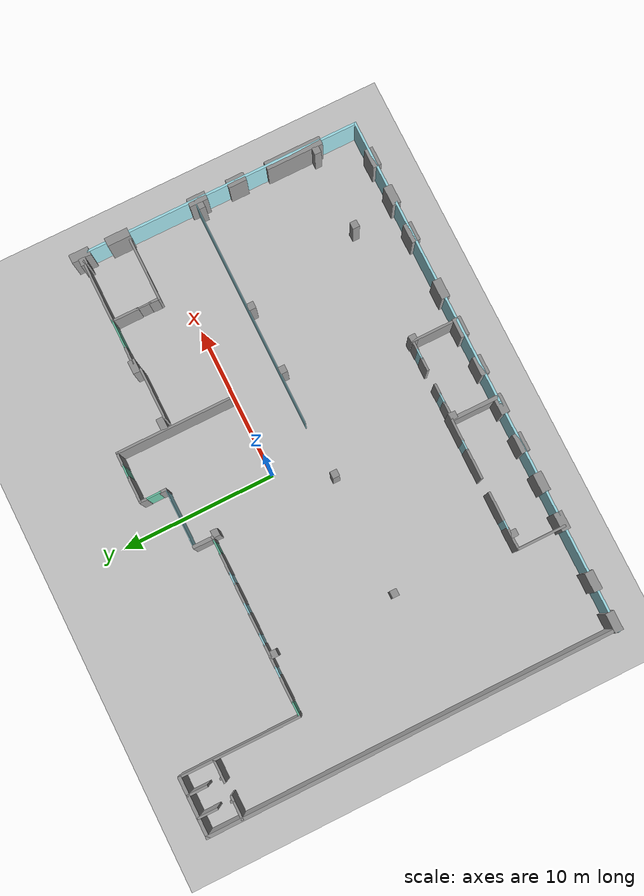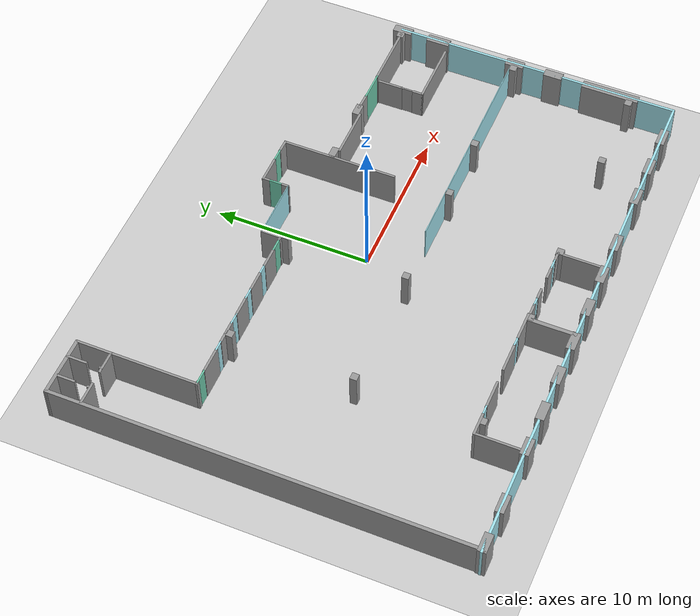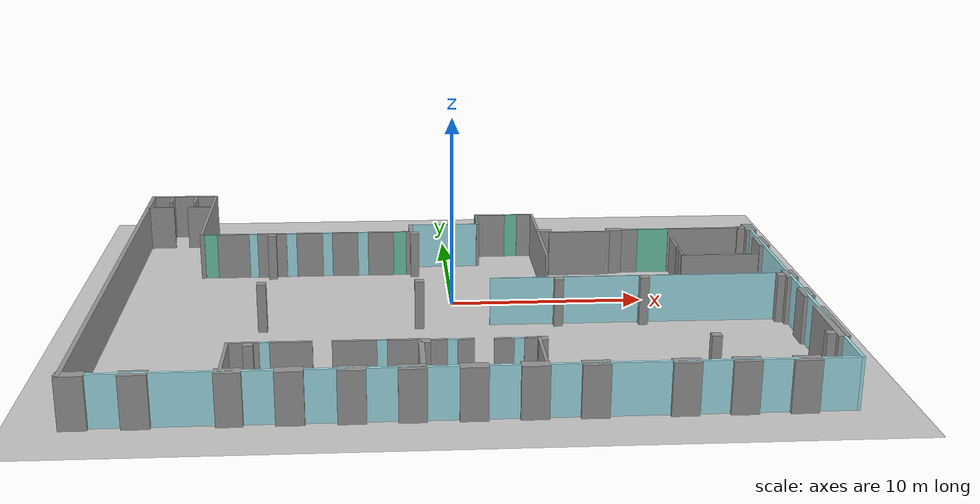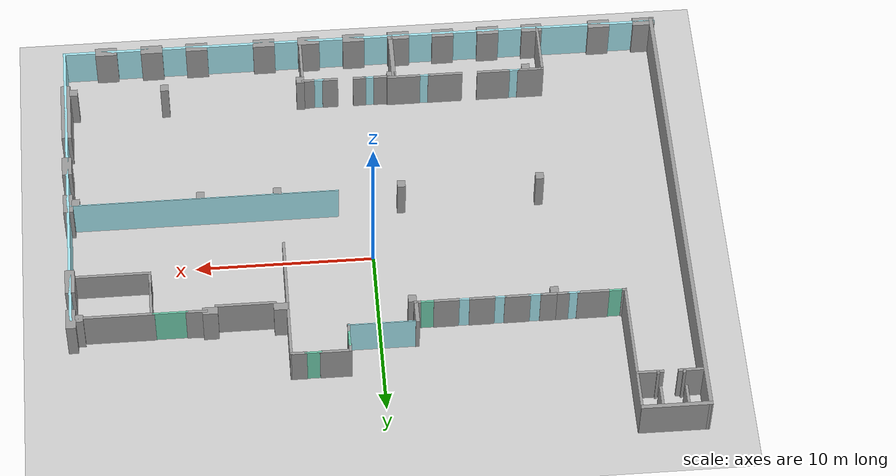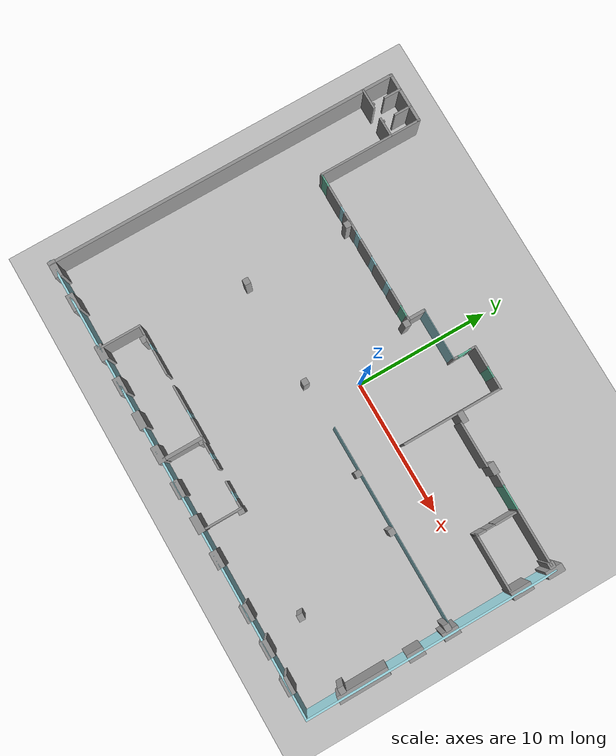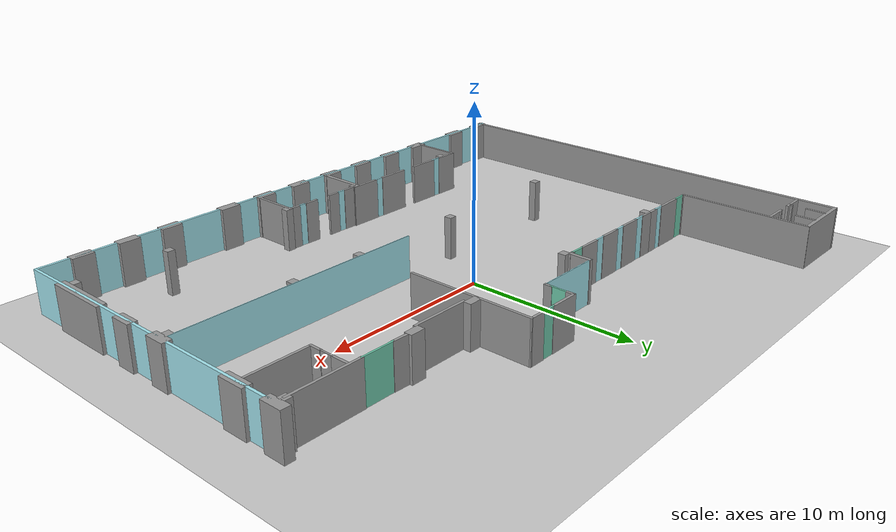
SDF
<sdf version="1.7">
 <world name="default">
  <model name="ground_plane">
   <static>1</static>
   <link name="link">
    <collision name="collision">
     <geometry><plane><normal>0 0 1</normal><size>100 100</size></plane></geometry>
     <surface>
      <contact><collide_bitmask>65535</collide_bitmask></contact>
      <friction><ode><mu>100</mu><mu2>50</mu2></ode></friction>
     </surface>
    </collision>
    <visual name="visual">
     <cast_shadows>0</cast_shadows>
     <geometry><plane><normal>0 0 1</normal><size>100 100</size></plane></geometry>
     <material>
      <script><uri>file://media/materials/scripts/gazebo.material</uri><name>Gazebo/Grey</name></script>
     </material>
    </visual>
   </link>
  </model>
  <model name="PilotfabrikFinal">
   <pose>-0.137877 -0.8541 0 0 -0 0</pose>
   <link name="Wall_0">
    <collision name="Wall_0_Collision">
     <geometry><box><size>34.5 0.15 2.5</size></box></geometry>
     <pose>0 0 1.25 0 -0 0</pose>
    </collision>
    <visual name="Wall_0_Visual">
     <pose>0 0 1.25 0 -0 0</pose>
     <geometry><box><size>34.5 0.15 2.5</size></box></geometry>
     <material>
      <script><uri>file://media/materials/scripts/gazebo.material</uri><name>Gazebo/Grey</name></script>
      <ambient>0.639216 0.894118 0.933333 1</ambient>
     </material>
     <meta><layer>0</layer></meta>
    </visual>
    <pose>-0.104001 -13.1604 0 0 -0 0</pose>
   </link>
   <link name="Wall_10">
    <collision name="Wall_10_Collision">
     <geometry><box><size>1.25 0.55 2.5</size></box></geometry>
     <pose>0 0 1.25 0 -0 0</pose>
    </collision>
    <visual name="Wall_10_Visual">
     <pose>0 0 1.25 0 -0 0</pose>
     <geometry><box><size>1.25 0.55 2.5</size></box></geometry>
     <material>
      <script><uri>file://media/materials/scripts/gazebo.material</uri><name>Gazebo/Grey</name></script>
      <ambient>1 1 1 1</ambient>
     </material>
     <meta><layer>0</layer></meta>
    </visual>
    <pose>-7.557 -13.1635 0 0 -0 0</pose>
   </link>
   <link name="Wall_100">
    <collision name="Wall_100_Collision">
     <geometry><box><size>0.46 0.45 2.5</size></box></geometry>
     <pose>0 0 1.25 0 -0 0</pose>
    </collision>
    <visual name="Wall_100_Visual">
     <pose>0 0 1.25 0 -0 0</pose>
     <geometry><box><size>0.46 0.45 2.5</size></box></geometry>
     <material>
      <script><uri>file://media/materials/scripts/gazebo.material</uri><name>Gazebo/Grey</name></script>
      <ambient>1 1 1 1</ambient>
     </material>
     <meta><layer>0</layer></meta>
    </visual>
    <pose>16.6293 -2.47328 0 0 -0 0</pose>
   </link>
   <link name="Wall_104">
    <collision name="Wall_104_Collision">
     <geometry><box><size>26.82 0.22 2.5</size></box></geometry>
     <pose>0 0 1.25 0 -0 0</pose>
    </collision>
    <visual name="Wall_104_Visual">
     <pose>0 0 1.25 0 -0 0</pose>
     <geometry><box><size>26.82 0.22 2.5</size></box></geometry>
     <material>
      <script><uri>file://media/materials/scripts/gazebo.material</uri><name>Gazebo/Grey</name></script>
      <ambient>1 1 1 1</ambient>
     </material>
     <meta><layer>0</layer></meta>
    </visual>
    <pose>-17.1451 0.04188 0 0 -0 -1.5708</pose>
   </link>
   <link name="Wall_107">
    <collision name="Wall_107_Collision">
     <geometry><box><size>3.88877 0.22 2.5</size></box></geometry>
     <pose>0 0 1.25 0 -0 0</pose>
    </collision>
    <visual name="Wall_107_Visual">
     <pose>0 0 1.25 0 -0 0</pose>
     <geometry><box><size>3.88877 0.22 2.5</size></box></geometry>
     <material>
      <script><uri>file://media/materials/scripts/gazebo.material</uri><name>Gazebo/Grey</name></script>
      <ambient>1 1 1 1</ambient>
     </material>
     <meta><layer>0</layer></meta>
    </visual>
    <pose>-15.3107 13.337 0 0 -0 -0.002611</pose>
   </link>
   <link name="Wall_112">
    <collision name="Wall_112_Collision">
     <geometry><box><size>7.86266 0.15 2.5</size></box></geometry>
     <pose>0 0 1.25 0 -0 0</pose>
    </collision>
    <visual name="Wall_112_Visual">
     <pose>0 0 1.25 0 -0 0</pose>
     <geometry><box><size>7.86266 0.15 2.5</size></box></geometry>
     <material>
      <script><uri>file://media/materials/scripts/gazebo.material</uri><name>Gazebo/Grey</name></script>
      <ambient>1 1 1 1</ambient>
     </material>
     <meta><layer>0</layer></meta>
    </visual>
    <pose>-13.4151 9.50726 0 0 -0 1.5708</pose>
   </link>
   <link name="Wall_114">
    <collision name="Wall_114_Collision">
     <geometry><box><size>1.55074 0.15 2.5</size></box></geometry>
     <pose>0 0 1.25 0 -0 0</pose>
    </collision>
    <visual name="Wall_114_Visual">
     <pose>0 0 1.25 0 -0 0</pose>
     <geometry><box><size>1.55074 0.15 2.5</size></box></geometry>
     <material>
      <script><uri>file://media/materials/scripts/gazebo.material</uri><name>Gazebo/Grey</name></script>
      <ambient>1 1 1 1</ambient>
     </material>
     <meta><layer>0</layer></meta>
    </visual>
    <pose>-16.4215 11.1312 0 0 -0 3.14159</pose>
   </link>
   <link name="Wall_118">
    <collision name="Wall_118_Collision">
     <geometry><box><size>1.49886 0.15 2.5</size></box></geometry>
     <pose>0 0 1.25 0 -0 0</pose>
    </collision>
    <visual name="Wall_118_Visual">
     <pose>0 0 1.25 0 -0 0</pose>
     <geometry><box><size>1.49886 0.15 2.5</size></box></geometry>
     <material>
      <script><uri>file://media/materials/scripts/gazebo.material</uri><name>Gazebo/Grey</name></script>
      <ambient>1 1 1 1</ambient>
     </material>
     <meta><layer>0</layer></meta>
    </visual>
    <pose>-14.1216 11.1308 0 0 -0 0</pose>
   </link>
   <link name="Wall_12">
    <collision name="Wall_12_Collision">
     <geometry><box><size>1.25 0.55 2.5</size></box></geometry>
     <pose>0 0 1.25 0 -0 0</pose>
    </collision>
    <visual name="Wall_12_Visual">
     <pose>0 0 1.25 0 -0 0</pose>
     <geometry><box><size>1.25 0.55 2.5</size></box></geometry>
     <material>
      <script><uri>file://media/materials/scripts/gazebo.material</uri><name>Gazebo/Grey</name></script>
      <ambient>1 1 1 1</ambient>
     </material>
     <meta><layer>0</layer></meta>
    </visual>
    <pose>-4.92573 -13.1637 0 0 -0 0</pose>
   </link>
   <link name="Wall_120">
    <collision name="Wall_120_Collision">
     <geometry><box><size>1.30002 0.15 2.5</size></box></geometry>
     <pose>0 0 1.25 0 -0 0</pose>
    </collision>
    <visual name="Wall_120_Visual">
     <pose>0 0 1.25 0 -0 0</pose>
     <geometry><box><size>1.30002 0.15 2.5</size></box></geometry>
     <material>
      <script><uri>file://media/materials/scripts/gazebo.material</uri><name>Gazebo/Grey</name></script>
      <ambient>1 1 1 1</ambient>
     </material>
     <meta><layer>0</layer></meta>
    </visual>
    <pose>-15.9632 12.7608 0 0 -0 -1.5708</pose>
   </link>
   <link name="Wall_122">
    <collision name="Wall_122_Collision">
     <geometry><box><size>1.32606 0.15 2.5</size></box></geometry>
     <pose>0 0 1.25 0 -0 0</pose>
    </collision>
    <visual name="Wall_122_Visual">
     <pose>0 0 1.25 0 -0 0</pose>
     <geometry><box><size>1.32606 0.15 2.5</size></box></geometry>
     <material>
      <script><uri>file://media/materials/scripts/gazebo.material</uri><name>Gazebo/Grey</name></script>
      <ambient>1 1 1 1</ambient>
     </material>
     <meta><layer>0</layer></meta>
    </visual>
    <pose>-14.5625 12.7567 0 0 -0 1.5708</pose>
   </link>
   <link name="Wall_124">
    <collision name="Wall_124_Collision">
     <geometry><box><size>0.208 0.15 2.5</size></box></geometry>
     <pose>0 0 1.25 0 -0 0</pose>
    </collision>
    <visual name="Wall_124_Visual">
     <pose>0 0 1.25 0 -0 0</pose>
     <geometry><box><size>0.208 0.15 2.5</size></box></geometry>
     <material>
      <script><uri>file://media/materials/scripts/gazebo.material</uri><name>Gazebo/Grey</name></script>
      <ambient>1 1 1 1</ambient>
     </material>
     <meta><layer>0</layer></meta>
    </visual>
    <pose>-15.9753 11.2184 0 0 -0 -1.5708</pose>
   </link>
   <link name="Wall_129">
    <collision name="Wall_129_Collision">
     <geometry><box><size>0.229144 0.15 2.5</size></box></geometry>
     <pose>0 0 1.25 0 -0 0</pose>
    </collision>
    <visual name="Wall_129_Visual">
     <pose>0 0 1.25 0 -0 0</pose>
     <geometry><box><size>0.229144 0.15 2.5</size></box></geometry>
     <material>
      <script><uri>file://media/materials/scripts/gazebo.material</uri><name>Gazebo/Grey</name></script>
      <ambient>1 1 1 1</ambient>
     </material>
     <meta><layer>0</layer></meta>
    </visual>
    <pose>-14.5513 11.1805 0 0 -0 -1.5708</pose>
   </link>
   <link name="Wall_131">
    <collision name="Wall_131_Collision">
     <geometry><box><size>0.25 0.15 2.5</size></box></geometry>
     <pose>0 0 1.25 0 -0 0</pose>
    </collision>
    <visual name="Wall_131_Visual">
     <pose>0 0 1.25 0 -0 0</pose>
     <geometry><box><size>0.25 0.15 2.5</size></box></geometry>
     <material>
      <script><uri>file://media/materials/scripts/gazebo.material</uri><name>Gazebo/Grey</name></script>
      <ambient>1 1 1 1</ambient>
     </material>
     <meta><layer>0</layer></meta>
    </visual>
    <pose>-13.3651 5.65076 0 0 -0 0</pose>
   </link>
   <link name="Wall_132">
    <collision name="Wall_132_Collision">
     <geometry><box><size>0.95 0.1 2.5</size></box></geometry>
     <pose>0 0 1.25 0 -0 0</pose>
    </collision>
    <visual name="Wall_132_Visual">
     <pose>0 0 1.25 0 -0 0</pose>
     <geometry><box><size>0.95 0.1 2.5</size></box></geometry>
     <material>
      <script><uri>file://media/materials/scripts/gazebo.material</uri><name>Gazebo/Grey</name></script>
      <ambient>0.435294 0.796078 0.67451 1</ambient>
     </material>
     <meta><layer>0</layer></meta>
    </visual>
    <pose>-12.8901 5.65076 0 0 -0 0</pose>
   </link>
   <link name="Wall_133">
    <collision name="Wall_133_Collision">
     <geometry><box><size>1.75 0.15 2.5</size></box></geometry>
     <pose>0 0 1.25 0 -0 0</pose>
    </collision>
    <visual name="Wall_133_Visual">
     <pose>0 0 1.25 0 -0 0</pose>
     <geometry><box><size>1.75 0.15 2.5</size></box></geometry>
     <material>
      <script><uri>file://media/materials/scripts/gazebo.material</uri><name>Gazebo/Grey</name></script>
      <ambient>1 1 1 1</ambient>
     </material>
     <meta><layer>0</layer></meta>
    </visual>
    <pose>-11.6651 5.65076 0 0 -0 0</pose>
   </link>
   <link name="Wall_134">
    <collision name="Wall_134_Collision">
     <geometry><box><size>0.7 0.1 2.5</size></box></geometry>
     <pose>0 0 1.25 0 -0 0</pose>
    </collision>
    <visual name="Wall_134_Visual">
     <pose>0 0 1.25 0 -0 0</pose>
     <geometry><box><size>0.7 0.1 2.5</size></box></geometry>
     <material>
      <script><uri>file://media/materials/scripts/gazebo.material</uri><name>Gazebo/Grey</name></script>
      <ambient>0.639216 0.894118 0.933333 1</ambient>
     </material>
     <meta><layer>0</layer></meta>
    </visual>
    <pose>-10.5651 5.65076 0 0 -0 0</pose>
   </link>
   <link name="Wall_135">
    <collision name="Wall_135_Collision">
     <geometry><box><size>0.75 0.15 2.5</size></box></geometry>
     <pose>0 0 1.25 0 -0 0</pose>
    </collision>
    <visual name="Wall_135_Visual">
     <pose>0 0 1.25 0 -0 0</pose>
     <geometry><box><size>0.75 0.15 2.5</size></box></geometry>
     <material>
      <script><uri>file://media/materials/scripts/gazebo.material</uri><name>Gazebo/Grey</name></script>
      <ambient>1 1 1 1</ambient>
     </material>
     <meta><layer>0</layer></meta>
    </visual>
    <pose>-9.9651 5.65076 0 0 -0 0</pose>
   </link>
   <link name="Wall_137">
    <collision name="Wall_137_Collision">
     <geometry><box><size>0.46 0.45 2.5</size></box></geometry>
     <pose>0 0 1.25 0 -0 0</pose>
    </collision>
    <visual name="Wall_137_Visual">
     <pose>0 0 1.25 0 -0 0</pose>
     <geometry><box><size>0.46 0.45 2.5</size></box></geometry>
     <material>
      <script><uri>file://media/materials/scripts/gazebo.material</uri><name>Gazebo/Grey</name></script>
      <ambient>1 1 1 1</ambient>
     </material>
     <meta><layer>0</layer></meta>
    </visual>
    <pose>-9.51967 5.39926 0 0 -0 3.14159</pose>
   </link>
   <link name="Wall_14">
    <collision name="Wall_14_Collision">
     <geometry><box><size>1.25 0.55 2.5</size></box></geometry>
     <pose>0 0 1.25 0 -0 0</pose>
    </collision>
    <visual name="Wall_14_Visual">
     <pose>0 0 1.25 0 -0 0</pose>
     <geometry><box><size>1.25 0.55 2.5</size></box></geometry>
     <material>
      <script><uri>file://media/materials/scripts/gazebo.material</uri><name>Gazebo/Grey</name></script>
      <ambient>1 1 1 1</ambient>
     </material>
     <meta><layer>0</layer></meta>
    </visual>
    <pose>-2.33348 -13.1639 0 0 -0 0</pose>
   </link>
   <link name="Wall_151">
    <collision name="Wall_151_Collision">
     <geometry><box><size>0.400151 0.15 2.5</size></box></geometry>
     <pose>0 0 1.25 0 -0 0</pose>
    </collision>
    <visual name="Wall_151_Visual">
     <pose>0 0 1.25 0 -0 0</pose>
     <geometry><box><size>0.400151 0.15 2.5</size></box></geometry>
     <material>
      <script><uri>file://media/materials/scripts/gazebo.material</uri><name>Gazebo/Grey</name></script>
      <ambient>1 1 1 1</ambient>
     </material>
     <meta><layer>0</layer></meta>
    </visual>
    <pose>-1.94085 5.65194 0 0 -0 -3.1401</pose>
   </link>
   <link name="Wall_152">
    <collision name="Wall_152_Collision">
     <geometry><box><size>0.949637 0.1 2.5</size></box></geometry>
     <pose>0 0 1.25 0 -0 0</pose>
    </collision>
    <visual name="Wall_152_Visual">
     <pose>0 0 1.25 0 -0 0</pose>
     <geometry><box><size>0.949637 0.1 2.5</size></box></geometry>
     <material>
      <script><uri>file://media/materials/scripts/gazebo.material</uri><name>Gazebo/Grey</name></script>
      <ambient>0.435294 0.796078 0.67451 1</ambient>
     </material>
     <meta><layer>0</layer></meta>
    </visual>
    <pose>-2.4911 5.65176 0 0 -0 3.14159</pose>
   </link>
   <link name="Wall_153">
    <collision name="Wall_153_Collision">
     <geometry><box><size>1.41491 0.15 2.5</size></box></geometry>
     <pose>0 0 1.25 0 -0 0</pose>
    </collision>
    <visual name="Wall_153_Visual">
     <pose>0 0 1.25 0 -0 0</pose>
     <geometry><box><size>1.41491 0.15 2.5</size></box></geometry>
     <material>
      <script><uri>file://media/materials/scripts/gazebo.material</uri><name>Gazebo/Grey</name></script>
      <ambient>1 1 1 1</ambient>
     </material>
     <meta><layer>0</layer></meta>
    </visual>
    <pose>-3.5486 5.65176 0 0 -0 3.14159</pose>
   </link>
   <link name="Wall_154">
    <collision name="Wall_154_Collision">
     <geometry><box><size>0.80452 0.1 2.5</size></box></geometry>
     <pose>0 0 1.25 0 -0 0</pose>
    </collision>
    <visual name="Wall_154_Visual">
     <pose>0 0 1.25 0 -0 0</pose>
     <geometry><box><size>0.80452 0.1 2.5</size></box></geometry>
     <material>
      <script><uri>file://media/materials/scripts/gazebo.material</uri><name>Gazebo/Grey</name></script>
      <ambient>0.639216 0.894118 0.933333 1</ambient>
     </material>
     <meta><layer>0</layer></meta>
    </visual>
    <pose>-4.5336 5.65176 0 0 -0 3.14159</pose>
   </link>
   <link name="Wall_155">
    <collision name="Wall_155_Collision">
     <geometry><box><size>1.41781 0.15 2.5</size></box></geometry>
     <pose>0 0 1.25 0 -0 0</pose>
    </collision>
    <visual name="Wall_155_Visual">
     <pose>0 0 1.25 0 -0 0</pose>
     <geometry><box><size>1.41781 0.15 2.5</size></box></geometry>
     <material>
      <script><uri>file://media/materials/scripts/gazebo.material</uri><name>Gazebo/Grey</name></script>
      <ambient>1 1 1 1</ambient>
     </material>
     <meta><layer>0</layer></meta>
    </visual>
    <pose>-5.5196 5.65176 0 0 -0 3.14159</pose>
   </link>
   <link name="Wall_156">
    <collision name="Wall_156_Collision">
     <geometry><box><size>0.776875 0.1 2.5</size></box></geometry>
     <pose>0 0 1.25 0 -0 0</pose>
    </collision>
    <visual name="Wall_156_Visual">
     <pose>0 0 1.25 0 -0 0</pose>
     <geometry><box><size>0.776875 0.1 2.5</size></box></geometry>
     <material>
      <script><uri>file://media/materials/scripts/gazebo.material</uri><name>Gazebo/Grey</name></script>
      <ambient>0.639216 0.894118 0.933333 1</ambient>
     </material>
     <meta><layer>0</layer></meta>
    </visual>
    <pose>-6.4916 5.65176 0 0 -0 3.14159</pose>
   </link>
   <link name="Wall_157">
    <collision name="Wall_157_Collision">
     <geometry><box><size>1.43813 0.15 2.5</size></box></geometry>
     <pose>0 0 1.25 0 -0 0</pose>
    </collision>
    <visual name="Wall_157_Visual">
     <pose>0 0 1.25 0 -0 0</pose>
     <geometry><box><size>1.43813 0.15 2.5</size></box></geometry>
     <material>
      <script><uri>file://media/materials/scripts/gazebo.material</uri><name>Gazebo/Grey</name></script>
      <ambient>1 1 1 1</ambient>
     </material>
     <meta><layer>0</layer></meta>
    </visual>
    <pose>-7.4741 5.65076 0 0 -0 -3.14004</pose>
   </link>
   <link name="Wall_158">
    <collision name="Wall_158_Collision">
     <geometry><box><size>0.798853 0.1 2.5</size></box></geometry>
     <pose>0 0 1.25 0 -0 0</pose>
    </collision>
    <visual name="Wall_158_Visual">
     <pose>0 0 1.25 0 -0 0</pose>
     <geometry><box><size>0.798853 0.1 2.5</size></box></geometry>
     <material>
      <script><uri>file://media/materials/scripts/gazebo.material</uri><name>Gazebo/Grey</name></script>
      <ambient>0.639216 0.894118 0.933333 1</ambient>
     </material>
     <meta><layer>0</layer></meta>
    </visual>
    <pose>-8.4676 5.64976 0 0 -0 3.14159</pose>
   </link>
   <link name="Wall_159">
    <collision name="Wall_159_Collision">
     <geometry><box><size>0.908853 0.15 2.5</size></box></geometry>
     <pose>0 0 1.25 0 -0 0</pose>
    </collision>
    <visual name="Wall_159_Visual">
     <pose>0 0 1.25 0 -0 0</pose>
     <geometry><box><size>0.908853 0.15 2.5</size></box></geometry>
     <material>
      <script><uri>file://media/materials/scripts/gazebo.material</uri><name>Gazebo/Grey</name></script>
      <ambient>1 1 1 1</ambient>
     </material>
     <meta><layer>0</layer></meta>
    </visual>
    <pose>-9.19653 5.65094 0 0 -0 3.13847</pose>
   </link>
   <link name="Wall_16">
    <collision name="Wall_16_Collision">
     <geometry><box><size>1.25 0.55 2.5</size></box></geometry>
     <pose>0 0 1.25 0 -0 0</pose>
    </collision>
    <visual name="Wall_16_Visual">
     <pose>0 0 1.25 0 -0 0</pose>
     <geometry><box><size>1.25 0.55 2.5</size></box></geometry>
     <material>
      <script><uri>file://media/materials/scripts/gazebo.material</uri><name>Gazebo/Grey</name></script>
      <ambient>1 1 1 1</ambient>
     </material>
     <meta><layer>0</layer></meta>
    </visual>
    <pose>0.284996 -13.1635 0 0 -0 0</pose>
   </link>
   <link name="Wall_161">
    <collision name="Wall_161_Collision">
     <geometry><box><size>0.46 0.45 2.5</size></box></geometry>
     <pose>0 0 1.25 0 -0 0</pose>
    </collision>
    <visual name="Wall_161_Visual">
     <pose>0 0 1.25 0 -0 0</pose>
     <geometry><box><size>0.46 0.45 2.5</size></box></geometry>
     <material>
      <script><uri>file://media/materials/scripts/gazebo.material</uri><name>Gazebo/Grey</name></script>
      <ambient>1 1 1 1</ambient>
     </material>
     <meta><layer>0</layer></meta>
    </visual>
    <pose>-1.67836 5.39095 0 0 -0 0</pose>
   </link>
   <link name="Wall_167">
    <collision name="Wall_167_Collision">
     <geometry><box><size>1.3 0.22 2.5</size></box></geometry>
     <pose>0 0 1.25 0 -0 0</pose>
    </collision>
    <visual name="Wall_167_Visual">
     <pose>0 0 1.25 0 -0 0</pose>
     <geometry><box><size>1.3 0.22 2.5</size></box></geometry>
     <material>
      <script><uri>file://media/materials/scripts/gazebo.material</uri><name>Gazebo/Grey</name></script>
      <ambient>1 1 1 1</ambient>
     </material>
     <meta><layer>0</layer></meta>
    </visual>
    <pose>-1.86149 6.29053 0 0 -0 -1.5708</pose>
   </link>
   <link name="Wall_170">
    <collision name="Wall_170_Collision">
     <geometry><box><size>3.881 0.05 2.5</size></box></geometry>
     <pose>0 0 1.25 0 -0 0</pose>
    </collision>
    <visual name="Wall_170_Visual">
     <pose>0 0 1.25 0 -0 0</pose>
     <geometry><box><size>3.881 0.05 2.5</size></box></geometry>
     <material>
      <script><uri>file://media/materials/scripts/gazebo.material</uri><name>Gazebo/Grey</name></script>
      <ambient>0.639216 0.894118 0.933333 1</ambient>
     </material>
     <meta><layer>0</layer></meta>
    </visual>
    <pose>0.034396 6.88376 0 0 -0 3.14159</pose>
   </link>
   <link name="Wall_177">
    <collision name="Wall_177_Collision">
     <geometry><box><size>0.5 0.15 2.5</size></box></geometry>
     <pose>0 0 1.25 0 -0 0</pose>
    </collision>
    <visual name="Wall_177_Visual">
     <pose>0 0 1.25 0 -0 0</pose>
     <geometry><box><size>0.5 0.15 2.5</size></box></geometry>
     <material>
      <script><uri>file://media/materials/scripts/gazebo.material</uri><name>Gazebo/Grey</name></script>
      <ambient>1 1 1 1</ambient>
     </material>
     <meta><layer>0</layer></meta>
    </visual>
    <pose>1.93271 8.36389 0 0 -0 -1.56972</pose>
   </link>
   <link name="Wall_178">
    <collision name="Wall_178_Collision">
     <geometry><box><size>1.05242 0.1 2.5</size></box></geometry>
     <pose>0 0 1.25 0 -0 0</pose>
    </collision>
    <visual name="Wall_178_Visual">
     <pose>0 0 1.25 0 -0 0</pose>
     <geometry><box><size>1.05242 0.1 2.5</size></box></geometry>
     <material>
      <script><uri>file://media/materials/scripts/gazebo.material</uri><name>Gazebo/Grey</name></script>
      <ambient>0.435294 0.796078 0.67451 1</ambient>
     </material>
     <meta><layer>0</layer></meta>
    </visual>
    <pose>1.9354 7.71276 0 0 -0 -1.56554</pose>
   </link>
   <link name="Wall_179">
    <collision name="Wall_179_Collision">
     <geometry><box><size>0.484309 0.15 2.5</size></box></geometry>
     <pose>0 0 1.25 0 -0 0</pose>
    </collision>
    <visual name="Wall_179_Visual">
     <pose>0 0 1.25 0 -0 0</pose>
     <geometry><box><size>0.484309 0.15 2.5</size></box></geometry>
     <material>
      <script><uri>file://media/materials/scripts/gazebo.material</uri><name>Gazebo/Grey</name></script>
      <ambient>1 1 1 1</ambient>
     </material>
     <meta><layer>0</layer></meta>
    </visual>
    <pose>1.93521 7.06941 0 0 -0 -1.58686</pose>
   </link>
   <link name="Wall_18">
    <collision name="Wall_18_Collision">
     <geometry><box><size>1.25 0.55 2.5</size></box></geometry>
     <pose>0 0 1.25 0 -0 0</pose>
    </collision>
    <visual name="Wall_18_Visual">
     <pose>0 0 1.25 0 -0 0</pose>
     <geometry><box><size>1.25 0.55 2.5</size></box></geometry>
     <material>
      <script><uri>file://media/materials/scripts/gazebo.material</uri><name>Gazebo/Grey</name></script>
      <ambient>1 1 1 1</ambient>
     </material>
     <meta><layer>0</layer></meta>
    </visual>
    <pose>2.90382 -13.1499 0 0 -0 0</pose>
   </link>
   <link name="Wall_181">
    <collision name="Wall_181_Collision">
     <geometry><box><size>1.75 0.15 2.5</size></box></geometry>
     <pose>0 0 1.25 0 -0 0</pose>
    </collision>
    <visual name="Wall_181_Visual">
     <pose>0 0 1.25 0 -0 0</pose>
     <geometry><box><size>1.75 0.15 2.5</size></box></geometry>
     <material>
      <script><uri>file://media/materials/scripts/gazebo.material</uri><name>Gazebo/Grey</name></script>
      <ambient>1 1 1 1</ambient>
     </material>
     <meta><layer>0</layer></meta>
    </visual>
    <pose>2.73271 8.53889 0 0 -0 -0.000167</pose>
   </link>
   <link name="Wall_182">
    <collision name="Wall_182_Collision">
     <geometry><box><size>0.949624 0.1 2.5</size></box></geometry>
     <pose>0 0 1.25 0 -0 0</pose>
    </collision>
    <visual name="Wall_182_Visual">
     <pose>0 0 1.25 0 -0 0</pose>
     <geometry><box><size>0.949624 0.1 2.5</size></box></geometry>
     <material>
      <script><uri>file://media/materials/scripts/gazebo.material</uri><name>Gazebo/Grey</name></script>
      <ambient>0.435294 0.796078 0.67451 1</ambient>
     </material>
     <meta><layer>0</layer></meta>
    </visual>
    <pose>3.9579 8.53876 0 0 -0 0</pose>
   </link>
   <link name="Wall_183">
    <collision name="Wall_183_Collision">
     <geometry><box><size>0.934401 0.15 2.5</size></box></geometry>
     <pose>0 0 1.25 0 -0 0</pose>
    </collision>
    <visual name="Wall_183_Visual">
     <pose>0 0 1.25 0 -0 0</pose>
     <geometry><box><size>0.934401 0.15 2.5</size></box></geometry>
     <material>
      <script><uri>file://media/materials/scripts/gazebo.material</uri><name>Gazebo/Grey</name></script>
      <ambient>1 1 1 1</ambient>
     </material>
     <meta><layer>0</layer></meta>
    </visual>
    <pose>4.7749 8.53326 0 0 -0 -0.01403</pose>
   </link>
   <link name="Wall_186">
    <collision name="Wall_186_Collision">
     <geometry><box><size>7.5 0.15 2.5</size></box></geometry>
     <pose>0 0 1.25 0 -0 0</pose>
    </collision>
    <visual name="Wall_186_Visual">
     <pose>0 0 1.25 0 -0 0</pose>
     <geometry><box><size>7.5 0.15 2.5</size></box></geometry>
     <material>
      <script><uri>file://media/materials/scripts/gazebo.material</uri><name>Gazebo/Grey</name></script>
      <ambient>1 1 1 1</ambient>
     </material>
     <meta><layer>0</layer></meta>
    </visual>
    <pose>5.1669 4.85276 0 0 -0 -1.5708</pose>
   </link>
   <link name="Wall_188">
    <collision name="Wall_188_Collision">
     <geometry><box><size>0.8 0.45 2.5</size></box></geometry>
     <pose>0 0 1.25 0 -0 0</pose>
    </collision>
    <visual name="Wall_188_Visual">
     <pose>0 0 1.25 0 -0 0</pose>
     <geometry><box><size>0.8 0.45 2.5</size></box></geometry>
     <material>
      <script><uri>file://media/materials/scripts/gazebo.material</uri><name>Gazebo/Grey</name></script>
      <ambient>1 1 1 1</ambient>
     </material>
     <meta><layer>0</layer></meta>
    </visual>
    <pose>5.54638 5.39249 0 0 -0 3.14159</pose>
   </link>
   <link name="Wall_190">
    <collision name="Wall_190_Collision">
     <geometry><box><size>0.85 0.45 2.5</size></box></geometry>
     <pose>0 0 1.25 0 -0 0</pose>
    </collision>
    <visual name="Wall_190_Visual">
     <pose>0 0 1.25 0 -0 0</pose>
     <geometry><box><size>0.85 0.45 2.5</size></box></geometry>
     <material>
      <script><uri>file://media/materials/scripts/gazebo.material</uri><name>Gazebo/Grey</name></script>
      <ambient>1 1 1 1</ambient>
     </material>
     <meta><layer>0</layer></meta>
    </visual>
    <pose>9.43474 5.39984 0 0 -0 0</pose>
   </link>
   <link name="Wall_193">
    <collision name="Wall_193_Collision">
     <geometry><box><size>3.37976 0.15 2.5</size></box></geometry>
     <pose>0 0 1.25 0 -0 0</pose>
    </collision>
    <visual name="Wall_193_Visual">
     <pose>0 0 1.25 0 -0 0</pose>
     <geometry><box><size>3.37976 0.15 2.5</size></box></geometry>
     <material>
      <script><uri>file://media/materials/scripts/gazebo.material</uri><name>Gazebo/Grey</name></script>
      <ambient>1 1 1 1</ambient>
     </material>
     <meta><layer>0</layer></meta>
    </visual>
    <pose>7.46601 5.10548 0 0 -0 0</pose>
   </link>
   <link name="Wall_195">
    <collision name="Wall_195_Collision">
     <geometry><box><size>4.21976 0.15 2.5</size></box></geometry>
     <pose>0 0 1.25 0 -0 0</pose>
    </collision>
    <visual name="Wall_195_Visual">
     <pose>0 0 1.25 0 -0 0</pose>
     <geometry><box><size>4.21976 0.15 2.5</size></box></geometry>
     <material>
      <script><uri>file://media/materials/scripts/gazebo.material</uri><name>Gazebo/Grey</name></script>
      <ambient>1 1 1 1</ambient>
     </material>
     <meta><layer>0</layer></meta>
    </visual>
    <pose>14.5838 5.37073 0 0 -0 -1.2e-05</pose>
   </link>
   <link name="Wall_197">
    <collision name="Wall_197_Collision">
     <geometry><box><size>0.46 0.45 2.5</size></box></geometry>
     <pose>0 0 1.25 0 -0 0</pose>
    </collision>
    <visual name="Wall_197_Visual">
     <pose>0 0 1.25 0 -0 0</pose>
     <geometry><box><size>0.46 0.45 2.5</size></box></geometry>
     <material>
      <script><uri>file://media/materials/scripts/gazebo.material</uri><name>Gazebo/Grey</name></script>
      <ambient>1 1 1 1</ambient>
     </material>
     <meta><layer>0</layer></meta>
    </visual>
    <pose>16.6074 5.38554 0 0 -0 0</pose>
   </link>
   <link name="Wall_199">
    <collision name="Wall_199_Collision">
     <geometry><box><size>1.94999 0.1 2.5</size></box></geometry>
     <pose>0 0 1.25 0 -0 0</pose>
    </collision>
    <visual name="Wall_199_Visual">
     <pose>0 0 1.25 0 -0 0</pose>
     <geometry><box><size>1.94999 0.1 2.5</size></box></geometry>
     <material>
      <script><uri>file://media/materials/scripts/gazebo.material</uri><name>Gazebo/Grey</name></script>
      <ambient>0.435294 0.796078 0.67451 1</ambient>
     </material>
     <meta><layer>0</layer></meta>
    </visual>
    <pose>11.6239 5.37076 0 0 -0 3.14159</pose>
   </link>
   <link name="Wall_2">
    <collision name="Wall_2_Collision">
     <geometry><box><size>1.25 0.55 2.5</size></box></geometry>
     <pose>0 0 1.25 0 -0 0</pose>
    </collision>
    <visual name="Wall_2_Visual">
     <pose>0 0 1.25 0 -0 0</pose>
     <geometry><box><size>1.25 0.55 2.5</size></box></geometry>
     <material>
      <script><uri>file://media/materials/scripts/gazebo.material</uri><name>Gazebo/Grey</name></script>
      <ambient>1 1 1 1</ambient>
     </material>
     <meta><layer>0</layer></meta>
    </visual>
    <pose>-16.6961 -13.1632 0 0 -0 0</pose>
   </link>
   <link name="Wall_20">
    <collision name="Wall_20_Collision">
     <geometry><box><size>1.25 0.55 2.5</size></box></geometry>
     <pose>0 0 1.25 0 -0 0</pose>
    </collision>
    <visual name="Wall_20_Visual">
     <pose>0 0 1.25 0 -0 0</pose>
     <geometry><box><size>1.25 0.55 2.5</size></box></geometry>
     <material>
      <script><uri>file://media/materials/scripts/gazebo.material</uri><name>Gazebo/Grey</name></script>
      <ambient>1 1 1 1</ambient>
     </material>
     <meta><layer>0</layer></meta>
    </visual>
    <pose>5.5089 -13.1632 0 0 -0 0</pose>
   </link>
   <link name="Wall_200">
    <collision name="Wall_200_Collision">
     <geometry><box><size>1.21455 0.15 2.5</size></box></geometry>
     <pose>0 0 1.25 0 -0 0</pose>
    </collision>
    <visual name="Wall_200_Visual">
     <pose>0 0 1.25 0 -0 0</pose>
     <geometry><box><size>1.21455 0.15 2.5</size></box></geometry>
     <material>
      <script><uri>file://media/materials/scripts/gazebo.material</uri><name>Gazebo/Grey</name></script>
      <ambient>1 1 1 1</ambient>
     </material>
     <meta><layer>0</layer></meta>
    </visual>
    <pose>10.1668 5.3853 0 0 -0 3.11427</pose>
   </link>
   <link name="Wall_204">
    <collision name="Wall_204_Collision">
     <geometry><box><size>0.75 0.15 2</size></box></geometry>
     <pose>0 0 1 0 -0 0</pose>
    </collision>
    <visual name="Wall_204_Visual">
     <pose>0 0 1 0 -0 0</pose>
     <geometry><box><size>0.75 0.15 2</size></box></geometry>
     <material>
      <script><uri>file://media/materials/scripts/gazebo.material</uri><name>Gazebo/Grey</name></script>
      <ambient>1 1 1 1</ambient>
     </material>
     <meta><layer>0</layer></meta>
    </visual>
    <pose>12.6699 2.57676 0 0 -0 1.5708</pose>
   </link>
   <link name="Wall_206">
    <collision name="Wall_206_Collision">
     <geometry><box><size>4.25 0.15 2</size></box></geometry>
     <pose>0 0 1 0 -0 0</pose>
    </collision>
    <visual name="Wall_206_Visual">
     <pose>0 0 1 0 -0 0</pose>
     <geometry><box><size>4.25 0.15 2</size></box></geometry>
     <material>
      <script><uri>file://media/materials/scripts/gazebo.material</uri><name>Gazebo/Grey</name></script>
      <ambient>1 1 1 1</ambient>
     </material>
     <meta><layer>0</layer></meta>
    </visual>
    <pose>14.7199 2.27676 0 0 -0 0</pose>
   </link>
   <link name="Wall_208">
    <collision name="Wall_208_Collision">
     <geometry><box><size>0.95 0.1 2</size></box></geometry>
     <pose>0 0 1 0 -0 0</pose>
    </collision>
    <visual name="Wall_208_Visual">
     <pose>0 0 1 0 -0 0</pose>
     <geometry><box><size>0.95 0.1 2</size></box></geometry>
     <material>
      <script><uri>file://media/materials/scripts/gazebo.material</uri><name>Gazebo/Grey</name></script>
      <ambient>1 1 1 1</ambient>
     </material>
     <meta><layer>0</layer></meta>
    </visual>
    <pose>12.6699 3.30176 0 0 -0 1.5708</pose>
   </link>
   <link name="Wall_209">
    <collision name="Wall_209_Collision">
     <geometry><box><size>1.75 0.15 2</size></box></geometry>
     <pose>0 0 1 0 -0 0</pose>
    </collision>
    <visual name="Wall_209_Visual">
     <pose>0 0 1 0 -0 0</pose>
     <geometry><box><size>1.75 0.15 2</size></box></geometry>
     <material>
      <script><uri>file://media/materials/scripts/gazebo.material</uri><name>Gazebo/Grey</name></script>
      <ambient>1 1 1 1</ambient>
     </material>
     <meta><layer>0</layer></meta>
    </visual>
    <pose>12.6699 4.52676 0 0 -0 1.5708</pose>
   </link>
   <link name="Wall_22">
    <collision name="Wall_22_Collision">
     <geometry><box><size>1.25 0.55 2.5</size></box></geometry>
     <pose>0 0 1.25 0 -0 0</pose>
    </collision>
    <visual name="Wall_22_Visual">
     <pose>0 0 1.25 0 -0 0</pose>
     <geometry><box><size>1.25 0.55 2.5</size></box></geometry>
     <material>
      <script><uri>file://media/materials/scripts/gazebo.material</uri><name>Gazebo/Grey</name></script>
      <ambient>1 1 1 1</ambient>
     </material>
     <meta><layer>0</layer></meta>
    </visual>
    <pose>9.41709 -13.1559 0 0 -0 0</pose>
   </link>
   <link name="Wall_24">
    <collision name="Wall_24_Collision">
     <geometry><box><size>1.25 0.55 2.5</size></box></geometry>
     <pose>0 0 1.25 0 -0 0</pose>
    </collision>
    <visual name="Wall_24_Visual">
     <pose>0 0 1.25 0 -0 0</pose>
     <geometry><box><size>1.25 0.55 2.5</size></box></geometry>
     <material>
      <script><uri>file://media/materials/scripts/gazebo.material</uri><name>Gazebo/Grey</name></script>
      <ambient>1 1 1 1</ambient>
     </material>
     <meta><layer>0</layer></meta>
    </visual>
    <pose>12.0229 -13.1503 0 0 -0 0</pose>
   </link>
   <link name="Wall_26">
    <collision name="Wall_26_Collision">
     <geometry><box><size>1.25 0.55 2.5</size></box></geometry>
     <pose>0 0 1.25 0 -0 0</pose>
    </collision>
    <visual name="Wall_26_Visual">
     <pose>0 0 1.25 0 -0 0</pose>
     <geometry><box><size>1.25 0.55 2.5</size></box></geometry>
     <material>
      <script><uri>file://media/materials/scripts/gazebo.material</uri><name>Gazebo/Grey</name></script>
      <ambient>1 1 1 1</ambient>
     </material>
     <meta><layer>0</layer></meta>
    </visual>
    <pose>14.6546 -13.1634 0 0 -0 0</pose>
   </link>
   <link name="Wall_28">
    <collision name="Wall_28_Collision">
     <geometry><box><size>18.75 0.15 2.5</size></box></geometry>
     <pose>0 0 1.25 0 -0 0</pose>
    </collision>
    <visual name="Wall_28_Visual">
     <pose>0 0 1.25 0 -0 0</pose>
     <geometry><box><size>18.75 0.15 2.5</size></box></geometry>
     <material>
      <script><uri>file://media/materials/scripts/gazebo.material</uri><name>Gazebo/Grey</name></script>
      <ambient>0.639216 0.894118 0.933333 1</ambient>
     </material>
     <meta><layer>0</layer></meta>
    </visual>
    <pose>17.071 -3.86043 0 0 -0 1.5708</pose>
   </link>
   <link name="Wall_30">
    <collision name="Wall_30_Collision">
     <geometry><box><size>3.75 0.55 2.5</size></box></geometry>
     <pose>0 0 1.25 0 -0 0</pose>
    </collision>
    <visual name="Wall_30_Visual">
     <pose>0 0 1.25 0 -0 0</pose>
     <geometry><box><size>3.75 0.55 2.5</size></box></geometry>
     <material>
      <script><uri>file://media/materials/scripts/gazebo.material</uri><name>Gazebo/Grey</name></script>
      <ambient>1 1 1 1</ambient>
     </material>
     <meta><layer>0</layer></meta>
    </visual>
    <pose>17.0587 -8.94167 0 0 -0 -1.5708</pose>
   </link>
   <link name="Wall_32">
    <collision name="Wall_32_Collision">
     <geometry><box><size>1.2 0.55 2.5</size></box></geometry>
     <pose>0 0 1.25 0 -0 0</pose>
    </collision>
    <visual name="Wall_32_Visual">
     <pose>0 0 1.25 0 -0 0</pose>
     <geometry><box><size>1.2 0.55 2.5</size></box></geometry>
     <material>
      <script><uri>file://media/materials/scripts/gazebo.material</uri><name>Gazebo/Grey</name></script>
      <ambient>1 1 1 1</ambient>
     </material>
     <meta><layer>0</layer></meta>
    </visual>
    <pose>17.079 -5.07261 0 0 -0 -1.5708</pose>
   </link>
   <link name="Wall_34">
    <collision name="Wall_34_Collision">
     <geometry><box><size>1.2 0.55 2.5</size></box></geometry>
     <pose>0 0 1.25 0 -0 0</pose>
    </collision>
    <visual name="Wall_34_Visual">
     <pose>0 0 1.25 0 -0 0</pose>
     <geometry><box><size>1.2 0.55 2.5</size></box></geometry>
     <material>
      <script><uri>file://media/materials/scripts/gazebo.material</uri><name>Gazebo/Grey</name></script>
      <ambient>1 1 1 1</ambient>
     </material>
     <meta><layer>0</layer></meta>
    </visual>
    <pose>17.0589 -2.4373 0 0 -0 -1.5708</pose>
   </link>
   <link name="Wall_36">
    <collision name="Wall_36_Collision">
     <geometry><box><size>1.51496 0.55 2.5</size></box></geometry>
     <pose>0 0 1.25 0 -0 0</pose>
    </collision>
    <visual name="Wall_36_Visual">
     <pose>0 0 1.25 0 -0 0</pose>
     <geometry><box><size>1.51496 0.55 2.5</size></box></geometry>
     <material>
      <script><uri>file://media/materials/scripts/gazebo.material</uri><name>Gazebo/Grey</name></script>
      <ambient>1 1 1 1</ambient>
     </material>
     <meta><layer>0</layer></meta>
    </visual>
    <pose>17.0662 2.89407 0 0 -0 -1.56777</pose>
   </link>
   <link name="Wall_38">
    <collision name="Wall_38_Collision">
     <geometry><box><size>1.25 0.55 2.5</size></box></geometry>
     <pose>0 0 1.25 0 -0 0</pose>
    </collision>
    <visual name="Wall_38_Visual">
     <pose>0 0 1.25 0 -0 0</pose>
     <geometry><box><size>1.25 0.55 2.5</size></box></geometry>
     <material>
      <script><uri>file://media/materials/scripts/gazebo.material</uri><name>Gazebo/Grey</name></script>
      <ambient>1 1 1 1</ambient>
     </material>
     <meta><layer>0</layer></meta>
    </visual>
    <pose>17.0655 5.38738 0 0 -0 -1.5708</pose>
   </link>
   <link name="Wall_4">
    <collision name="Wall_4_Collision">
     <geometry><box><size>1.25 0.55 2.5</size></box></geometry>
     <pose>0 0 1.25 0 -0 0</pose>
    </collision>
    <visual name="Wall_4_Visual">
     <pose>0 0 1.25 0 -0 0</pose>
     <geometry><box><size>1.25 0.55 2.5</size></box></geometry>
     <material>
      <script><uri>file://media/materials/scripts/gazebo.material</uri><name>Gazebo/Grey</name></script>
      <ambient>1 1 1 1</ambient>
     </material>
     <meta><layer>0</layer></meta>
    </visual>
    <pose>-14.0645 -13.177 0 0 -0 0</pose>
   </link>
   <link name="Wall_40">
    <collision name="Wall_40_Collision">
     <geometry><box><size>15.15 0.05 2.5</size></box></geometry>
     <pose>0 0 1.25 0 -0 0</pose>
    </collision>
    <visual name="Wall_40_Visual">
     <pose>0 0 1.25 0 -0 0</pose>
     <geometry><box><size>15.15 0.05 2.5</size></box></geometry>
     <material>
      <script><uri>file://media/materials/scripts/gazebo.material</uri><name>Gazebo/Grey</name></script>
      <ambient>0.639216 0.894118 0.933333 1</ambient>
     </material>
     <meta><layer>0</layer></meta>
    </visual>
    <pose>9.4449 -2.25824 0 0 -0 0</pose>
   </link>
   <link name="Wall_44">
    <collision name="Wall_44_Collision">
     <geometry><box><size>3.2 0.15 2.5</size></box></geometry>
     <pose>0 0 1.25 0 -0 0</pose>
    </collision>
    <visual name="Wall_44_Visual">
     <pose>0 0 1.25 0 -0 0</pose>
     <geometry><box><size>3.2 0.15 2.5</size></box></geometry>
     <material>
      <script><uri>file://media/materials/scripts/gazebo.material</uri><name>Gazebo/Grey</name></script>
      <ambient>1 1 1 1</ambient>
     </material>
     <meta><layer>0</layer></meta>
    </visual>
    <pose>-10.4528 -11.6384 0 0 -0 1.5708</pose>
   </link>
   <link name="Wall_46">
    <collision name="Wall_46_Collision">
     <geometry><box><size>1.5 0.15 2.5</size></box></geometry>
     <pose>0 0 1.25 0 -0 0</pose>
    </collision>
    <visual name="Wall_46_Visual">
     <pose>0 0 1.25 0 -0 0</pose>
     <geometry><box><size>1.5 0.15 2.5</size></box></geometry>
     <material>
      <script><uri>file://media/materials/scripts/gazebo.material</uri><name>Gazebo/Grey</name></script>
      <ambient>1 1 1 1</ambient>
     </material>
     <meta><layer>0</layer></meta>
    </visual>
    <pose>-9.77797 -10.1133 0 0 -0 9.3e-05</pose>
   </link>
   <link name="Wall_47">
    <collision name="Wall_47_Collision">
     <geometry><box><size>0.700261 0.1 2.5</size></box></geometry>
     <pose>0 0 1.25 0 -0 0</pose>
    </collision>
    <visual name="Wall_47_Visual">
     <pose>0 0 1.25 0 -0 0</pose>
     <geometry><box><size>0.700261 0.1 2.5</size></box></geometry>
     <material>
      <script><uri>file://media/materials/scripts/gazebo.material</uri><name>Gazebo/Grey</name></script>
      <ambient>0.639216 0.894118 0.933333 1</ambient>
     </material>
     <meta><layer>0</layer></meta>
    </visual>
    <pose>-8.8031 -10.1132 0 0 -0 0</pose>
   </link>
   <link name="Wall_48">
    <collision name="Wall_48_Collision">
     <geometry><box><size>1.9 0.15 2.5</size></box></geometry>
     <pose>0 0 1.25 0 -0 0</pose>
    </collision>
    <visual name="Wall_48_Visual">
     <pose>0 0 1.25 0 -0 0</pose>
     <geometry><box><size>1.9 0.15 2.5</size></box></geometry>
     <material>
      <script><uri>file://media/materials/scripts/gazebo.material</uri><name>Gazebo/Grey</name></script>
      <ambient>1 1 1 1</ambient>
     </material>
     <meta><layer>0</layer></meta>
    </visual>
    <pose>-7.62797 -10.1133 0 0 -0 -7.1e-05</pose>
   </link>
   <link name="Wall_51">
    <collision name="Wall_51_Collision">
     <geometry><box><size>1.99137 0.15 2.5</size></box></geometry>
     <pose>0 0 1.25 0 -0 0</pose>
    </collision>
    <visual name="Wall_51_Visual">
     <pose>0 0 1.25 0 -0 0</pose>
     <geometry><box><size>1.99137 0.15 2.5</size></box></geometry>
     <material>
      <script><uri>file://media/materials/scripts/gazebo.material</uri><name>Gazebo/Grey</name></script>
      <ambient>1 1 1 1</ambient>
     </material>
     <meta><layer>0</layer></meta>
    </visual>
    <pose>-4.82241 -10.1124 0 0 -0 0.000403</pose>
   </link>
   <link name="Wall_52">
    <collision name="Wall_52_Collision">
     <geometry><box><size>0.7 0.1 2.5</size></box></geometry>
     <pose>0 0 1.25 0 -0 0</pose>
    </collision>
    <visual name="Wall_52_Visual">
     <pose>0 0 1.25 0 -0 0</pose>
     <geometry><box><size>0.7 0.1 2.5</size></box></geometry>
     <material>
      <script><uri>file://media/materials/scripts/gazebo.material</uri><name>Gazebo/Grey</name></script>
      <ambient>0.639216 0.894118 0.933333 1</ambient>
     </material>
     <meta><layer>0</layer></meta>
    </visual>
    <pose>-3.60176 -10.1092 0 0 -0 0</pose>
   </link>
   <link name="Wall_53">
    <collision name="Wall_53_Collision">
     <geometry><box><size>1.90875 0.15 2.5</size></box></geometry>
     <pose>0 0 1.25 0 -0 0</pose>
    </collision>
    <visual name="Wall_53_Visual">
     <pose>0 0 1.25 0 -0 0</pose>
     <geometry><box><size>1.90875 0.15 2.5</size></box></geometry>
     <material>
      <script><uri>file://media/materials/scripts/gazebo.material</uri><name>Gazebo/Grey</name></script>
      <ambient>1 1 1 1</ambient>
     </material>
     <meta><layer>0</layer></meta>
    </visual>
    <pose>-2.42241 -10.1124 0 0 -0 -0.000422</pose>
   </link>
   <link name="Wall_55">
    <collision name="Wall_55_Collision">
     <geometry><box><size>3.1 0.25 2.5</size></box></geometry>
     <pose>0 0 1.25 0 -0 0</pose>
    </collision>
    <visual name="Wall_55_Visual">
     <pose>0 0 1.25 0 -0 0</pose>
     <geometry><box><size>3.1 0.25 2.5</size></box></geometry>
     <material>
      <script><uri>file://media/materials/scripts/gazebo.material</uri><name>Gazebo/Grey</name></script>
      <ambient>1 1 1 1</ambient>
     </material>
     <meta><layer>0</layer></meta>
    </visual>
    <pose>-1.86565 -11.6754 0 0 -0 -1.5708</pose>
   </link>
   <link name="Wall_57">
    <collision name="Wall_57_Collision">
     <geometry><box><size>0.75 0.15 2.5</size></box></geometry>
     <pose>0 0 1.25 0 -0 0</pose>
    </collision>
    <visual name="Wall_57_Visual">
     <pose>0 0 1.25 0 -0 0</pose>
     <geometry><box><size>0.75 0.15 2.5</size></box></geometry>
     <material>
      <script><uri>file://media/materials/scripts/gazebo.material</uri><name>Gazebo/Grey</name></script>
      <ambient>1 1 1 1</ambient>
     </material>
     <meta><layer>0</layer></meta>
    </visual>
    <pose>3.10679 -10.2004 0 0 -0 3.14098</pose>
   </link>
   <link name="Wall_58">
    <collision name="Wall_58_Collision">
     <geometry><box><size>0.700202 0.1 2.5</size></box></geometry>
     <pose>0 0 1.25 0 -0 0</pose>
    </collision>
    <visual name="Wall_58_Visual">
     <pose>0 0 1.25 0 -0 0</pose>
     <geometry><box><size>0.700202 0.1 2.5</size></box></geometry>
     <material>
      <script><uri>file://media/materials/scripts/gazebo.material</uri><name>Gazebo/Grey</name></script>
      <ambient>0.639216 0.894118 0.933333 1</ambient>
     </material>
     <meta><layer>0</layer></meta>
    </visual>
    <pose>2.5069 -10.2002 0 0 -0 3.14159</pose>
   </link>
   <link name="Wall_59">
    <collision name="Wall_59_Collision">
     <geometry><box><size>0.9 0.15 2.5</size></box></geometry>
     <pose>0 0 1.25 0 -0 0</pose>
    </collision>
    <visual name="Wall_59_Visual">
     <pose>0 0 1.25 0 -0 0</pose>
     <geometry><box><size>0.9 0.15 2.5</size></box></geometry>
     <material>
      <script><uri>file://media/materials/scripts/gazebo.material</uri><name>Gazebo/Grey</name></script>
      <ambient>1 1 1 1</ambient>
     </material>
     <meta><layer>0</layer></meta>
    </visual>
    <pose>1.8318 -10.2004 0 0 -0 -3.1411</pose>
   </link>
   <link name="Wall_61">
    <collision name="Wall_61_Collision">
     <geometry><box><size>0.75 0.15 2.5</size></box></geometry>
     <pose>0 0 1.25 0 -0 0</pose>
    </collision>
    <visual name="Wall_61_Visual">
     <pose>0 0 1.25 0 -0 0</pose>
     <geometry><box><size>0.75 0.15 2.5</size></box></geometry>
     <material>
      <script><uri>file://media/materials/scripts/gazebo.material</uri><name>Gazebo/Grey</name></script>
      <ambient>1 1 1 1</ambient>
     </material>
     <meta><layer>0</layer></meta>
    </visual>
    <pose>0.127696 -10.1884 0 0 -0 3.14096</pose>
   </link>
   <link name="Wall_62">
    <collision name="Wall_62_Collision">
     <geometry><box><size>0.7004 0.1 2.5</size></box></geometry>
     <pose>0 0 1.25 0 -0 0</pose>
    </collision>
    <visual name="Wall_62_Visual">
     <pose>0 0 1.25 0 -0 0</pose>
     <geometry><box><size>0.7004 0.1 2.5</size></box></geometry>
     <material>
      <script><uri>file://media/materials/scripts/gazebo.material</uri><name>Gazebo/Grey</name></script>
      <ambient>0.639216 0.894118 0.933333 1</ambient>
     </material>
     <meta><layer>0</layer></meta>
    </visual>
    <pose>-0.472104 -10.1882 0 0 -0 3.14159</pose>
   </link>
   <link name="Wall_63">
    <collision name="Wall_63_Collision">
     <geometry><box><size>0.9 0.15 2.5</size></box></geometry>
     <pose>0 0 1.25 0 -0 0</pose>
    </collision>
    <visual name="Wall_63_Visual">
     <pose>0 0 1.25 0 -0 0</pose>
     <geometry><box><size>0.9 0.15 2.5</size></box></geometry>
     <material>
      <script><uri>file://media/materials/scripts/gazebo.material</uri><name>Gazebo/Grey</name></script>
      <ambient>1 1 1 1</ambient>
     </material>
     <meta><layer>0</layer></meta>
    </visual>
    <pose>-1.1473 -10.1884 0 0 -0 -3.14108</pose>
   </link>
   <link name="Wall_66">
    <collision name="Wall_66_Collision">
     <geometry><box><size>2.75 0.15 2.5</size></box></geometry>
     <pose>0 0 1.25 0 -0 0</pose>
    </collision>
    <visual name="Wall_66_Visual">
     <pose>0 0 1.25 0 -0 0</pose>
     <geometry><box><size>2.75 0.15 2.5</size></box></geometry>
     <material>
      <script><uri>file://media/materials/scripts/gazebo.material</uri><name>Gazebo/Grey</name></script>
      <ambient>1 1 1 1</ambient>
     </material>
     <meta><layer>0</layer></meta>
    </visual>
    <pose>3.40669 -11.5006 0 0 -0 -1.5708</pose>
   </link>
   <link name="Wall_8">
    <collision name="Wall_8_Collision">
     <geometry><box><size>1.1804 0.55 2.5</size></box></geometry>
     <pose>0 0 1.25 0 -0 0</pose>
    </collision>
    <visual name="Wall_8_Visual">
     <pose>0 0 1.25 0 -0 0</pose>
     <geometry><box><size>1.1804 0.55 2.5</size></box></geometry>
     <material>
      <script><uri>file://media/materials/scripts/gazebo.material</uri><name>Gazebo/Grey</name></script>
      <ambient>1 1 1 1</ambient>
     </material>
     <meta><layer>0</layer></meta>
    </visual>
    <pose>-10.1277 -13.1634 0 0 -0 0</pose>
   </link>
   <link name="Wall_82">
    <collision name="Wall_82_Collision">
     <geometry><box><size>0.46 0.45 2.5</size></box></geometry>
     <pose>0 0 1.25 0 -0 0</pose>
    </collision>
    <visual name="Wall_82_Visual">
     <pose>0 0 1.25 0 -0 0</pose>
     <geometry><box><size>0.46 0.45 2.5</size></box></geometry>
     <material>
      <script><uri>file://media/materials/scripts/gazebo.material</uri><name>Gazebo/Grey</name></script>
      <ambient>1 1 1 1</ambient>
     </material>
     <meta><layer>0</layer></meta>
    </visual>
    <pose>11.3797 -10.2885 0 0 -0 0</pose>
   </link>
   <link name="Wall_84">
    <collision name="Wall_84_Collision">
     <geometry><box><size>0.46 0.45 2.5</size></box></geometry>
     <pose>0 0 1.25 0 -0 0</pose>
    </collision>
    <visual name="Wall_84_Visual">
     <pose>0 0 1.25 0 -0 0</pose>
     <geometry><box><size>0.46 0.45 2.5</size></box></geometry>
     <material>
      <script><uri>file://media/materials/scripts/gazebo.material</uri><name>Gazebo/Grey</name></script>
      <ambient>1 1 1 1</ambient>
     </material>
     <meta><layer>0</layer></meta>
    </visual>
    <pose>3.55529 -10.2884 0 0 -0 0</pose>
   </link>
   <link name="Wall_86">
    <collision name="Wall_86_Collision">
     <geometry><box><size>0.46 0.45 2.5</size></box></geometry>
     <pose>0 0 1.25 0 -0 0</pose>
    </collision>
    <visual name="Wall_86_Visual">
     <pose>0 0 1.25 0 -0 0</pose>
     <geometry><box><size>0.46 0.45 2.5</size></box></geometry>
     <material>
      <script><uri>file://media/materials/scripts/gazebo.material</uri><name>Gazebo/Grey</name></script>
      <ambient>1 1 1 1</ambient>
     </material>
     <meta><layer>0</layer></meta>
    </visual>
    <pose>-9.51655 -2.45053 0 0 -0 0</pose>
   </link>
   <link name="Wall_88">
    <collision name="Wall_88_Collision">
     <geometry><box><size>0.46 0.45 2.5</size></box></geometry>
     <pose>0 0 1.25 0 -0 0</pose>
    </collision>
    <visual name="Wall_88_Visual">
     <pose>0 0 1.25 0 -0 0</pose>
     <geometry><box><size>0.46 0.45 2.5</size></box></geometry>
     <material>
      <script><uri>file://media/materials/scripts/gazebo.material</uri><name>Gazebo/Grey</name></script>
      <ambient>1 1 1 1</ambient>
     </material>
     <meta><layer>0</layer></meta>
    </visual>
    <pose>-1.68334 -2.45032 0 0 -0 0</pose>
   </link>
   <link name="Wall_90">
    <collision name="Wall_90_Collision">
     <geometry><box><size>0.46 0.45 2.5</size></box></geometry>
     <pose>0 0 1.25 0 -0 0</pose>
    </collision>
    <visual name="Wall_90_Visual">
     <pose>0 0 1.25 0 -0 0</pose>
     <geometry><box><size>0.46 0.45 2.5</size></box></geometry>
     <material>
      <script><uri>file://media/materials/scripts/gazebo.material</uri><name>Gazebo/Grey</name></script>
      <ambient>1 1 1 1</ambient>
     </material>
     <meta><layer>0</layer></meta>
    </visual>
    <pose>5.31191 -2.46347 0 0 -0 0</pose>
   </link>
   <link name="Wall_92">
    <collision name="Wall_92_Collision">
     <geometry><box><size>0.46 0.45 2.5</size></box></geometry>
     <pose>0 0 1.25 0 -0 0</pose>
    </collision>
    <visual name="Wall_92_Visual">
     <pose>0 0 1.25 0 -0 0</pose>
     <geometry><box><size>0.46 0.45 2.5</size></box></geometry>
     <material>
      <script><uri>file://media/materials/scripts/gazebo.material</uri><name>Gazebo/Grey</name></script>
      <ambient>1 1 1 1</ambient>
     </material>
     <meta><layer>0</layer></meta>
    </visual>
    <pose>9.63887 -2.47718 0 0 -0 0</pose>
   </link>
   <link name="Wall_94">
    <collision name="Wall_94_Collision">
     <geometry><box><size>0.46 0.45 2.5</size></box></geometry>
     <pose>0 0 1.25 0 -0 0</pose>
    </collision>
    <visual name="Wall_94_Visual">
     <pose>0 0 1.25 0 -0 0</pose>
     <geometry><box><size>0.46 0.45 2.5</size></box></geometry>
     <material>
      <script><uri>file://media/materials/scripts/gazebo.material</uri><name>Gazebo/Grey</name></script>
      <ambient>1 1 1 1</ambient>
     </material>
     <meta><layer>0</layer></meta>
    </visual>
    <pose>-9.50505 -10.2957 0 0 -0 0</pose>
   </link>
   <link name="Wall_96">
    <collision name="Wall_96_Collision">
     <geometry><box><size>0.46 0.45 2.5</size></box></geometry>
     <pose>0 0 1.25 0 -0 0</pose>
    </collision>
    <visual name="Wall_96_Visual">
     <pose>0 0 1.25 0 -0 0</pose>
     <geometry><box><size>0.46 0.45 2.5</size></box></geometry>
     <material>
      <script><uri>file://media/materials/scripts/gazebo.material</uri><name>Gazebo/Grey</name></script>
      <ambient>1 1 1 1</ambient>
     </material>
     <meta><layer>0</layer></meta>
    </visual>
    <pose>-1.68688 -10.295 0 0 -0 0</pose>
   </link>
   <link name="Wall_98">
    <collision name="Wall_98_Collision">
     <geometry><box><size>0.46 0.45 2.5</size></box></geometry>
     <pose>0 0 1.25 0 -0 0</pose>
    </collision>
    <visual name="Wall_98_Visual">
     <pose>0 0 1.25 0 -0 0</pose>
     <geometry><box><size>0.46 0.45 2.5</size></box></geometry>
     <material>
      <script><uri>file://media/materials/scripts/gazebo.material</uri><name>Gazebo/Grey</name></script>
      <ambient>1 1 1 1</ambient>
     </material>
     <meta><layer>0</layer></meta>
    </visual>
    <pose>16.5992 -10.2923 0 0 -0 0</pose>
   </link>
   <static>1</static>
  </model>
 </world>
</sdf>
